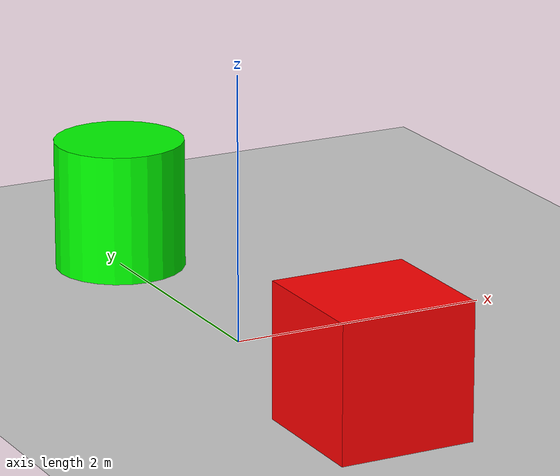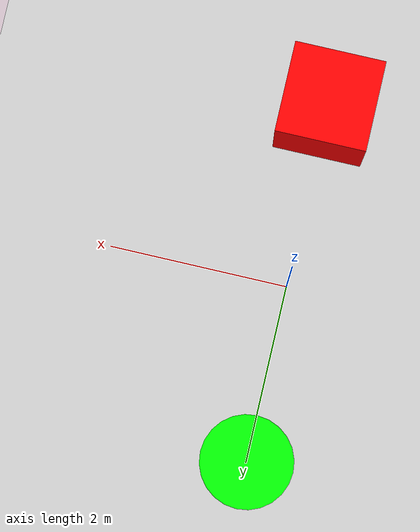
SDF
<?xml version="1.0" ?>
<sdf version="1.6">
  <world name="apply_link_wrench">
    <plugin
      filename="gz-sim-physics-system"
      name="gz::sim::systems::Physics">
    </plugin>
    <plugin
      filename="gz-sim-scene-broadcaster-system"
      name="gz::sim::systems::SceneBroadcaster">
    </plugin>
    <plugin
      filename="gz-sim-apply-link-wrench-system"
      name="gz::sim::systems::ApplyLinkWrench">
      <persistent>
        <entity_name>cylinder</entity_name>
        <entity_type>model</entity_type>
        <force>0 0 0</force>
        <torque>0 0 0</torque>
      </persistent>
    </plugin>

    <gravity>0 0 0</gravity>

    <light type="directional" name="sun">
      <cast_shadows>true</cast_shadows>
      <pose>0 0 10 0 0 0</pose>
      <diffuse>0.8 0.8 0.8 1</diffuse>
      <specular>0.2 0.2 0.2 1</specular>
      <attenuation>
        <range>1000</range>
        <constant>0.9</constant>
        <linear>0.01</linear>
        <quadratic>0.001</quadratic>
      </attenuation>
      <direction>-0.5 0.1 -0.9</direction>
    </light>
    <model name="ground_plane">
      <static>true</static>
      <link name="link">
        <collision name="collision">
          <geometry>
            <plane>
              <normal>0 0 1</normal>
              <size>100 100</size>
            </plane>
          </geometry>
        </collision>
        <visual name="visual">
          <geometry>
            <plane>
              <normal>0 0 1</normal>
              <size>100 100</size>
            </plane>
          </geometry>
          <material>
            <ambient>0.8 0.8 0.8 1</ambient>
            <diffuse>0.8 0.8 0.8 1</diffuse>
            <specular>0.8 0.8 0.8 1</specular>
          </material>
        </visual>
      </link>
    </model>

    <model name="box">
      <pose>0 -2 0.5 0 0 0</pose>
      <link name="link">
        <inertial>
          <inertia>
            <ixx>1</ixx>
            <ixy>0</ixy>
            <ixz>0</ixz>
            <iyy>1</iyy>
            <iyz>0</iyz>
            <izz>1</izz>
          </inertia>
          <mass>1.0</mass>
        </inertial>
        <collision name="collision">
          <geometry>
            <box>
              <size>1 1 1</size>
            </box>
          </geometry>
          <surface>
            <friction>
              <bullet>
                <friction>0.7</friction>
                <friction2>1</friction2>
                <rolling_friction>0.2</rolling_friction>
              </bullet>
            </friction>
          </surface>
        </collision>

        <visual name="visual">
          <geometry>
            <box>
              <size>1 1 1</size>
            </box>
          </geometry>
          <material>
            <ambient>1 0 0 1</ambient>
            <diffuse>1 0 0 1</diffuse>
            <specular>1 0 0 1</specular>
          </material>
        </visual>
      </link>
    </model>

    <model name="cylinder">
      <pose>0 2 0.5 0 0 0</pose>
      <link name="link">
        <inertial>
          <inertia>
            <ixx>2</ixx>
            <ixy>0</ixy>
            <ixz>0</ixz>
            <iyy>2</iyy>
            <iyz>0</iyz>
            <izz>2</izz>
          </inertia>
          <mass>2.0</mass>
        </inertial>
        <collision name="collision">
          <geometry>
            <cylinder>
              <radius>0.5</radius>
              <length>1.0</length>
            </cylinder>
          </geometry>
          <surface>
            <friction>
              <bullet>
                <friction>0.7</friction>
                <friction2>1</friction2>
                <rolling_friction>0.2</rolling_friction>
              </bullet>
            </friction>
          </surface>
        </collision>

        <visual name="visual">
          <geometry>
            <cylinder>
              <radius>0.5</radius>
              <length>1.0</length>
            </cylinder>
          </geometry>
          <material>
            <ambient>0 1 0 1</ambient>
            <diffuse>0 1 0 1</diffuse>
            <specular>0 1 0 1</specular>
          </material>
        </visual>
      </link>
    </model>
  </world>
</sdf>
